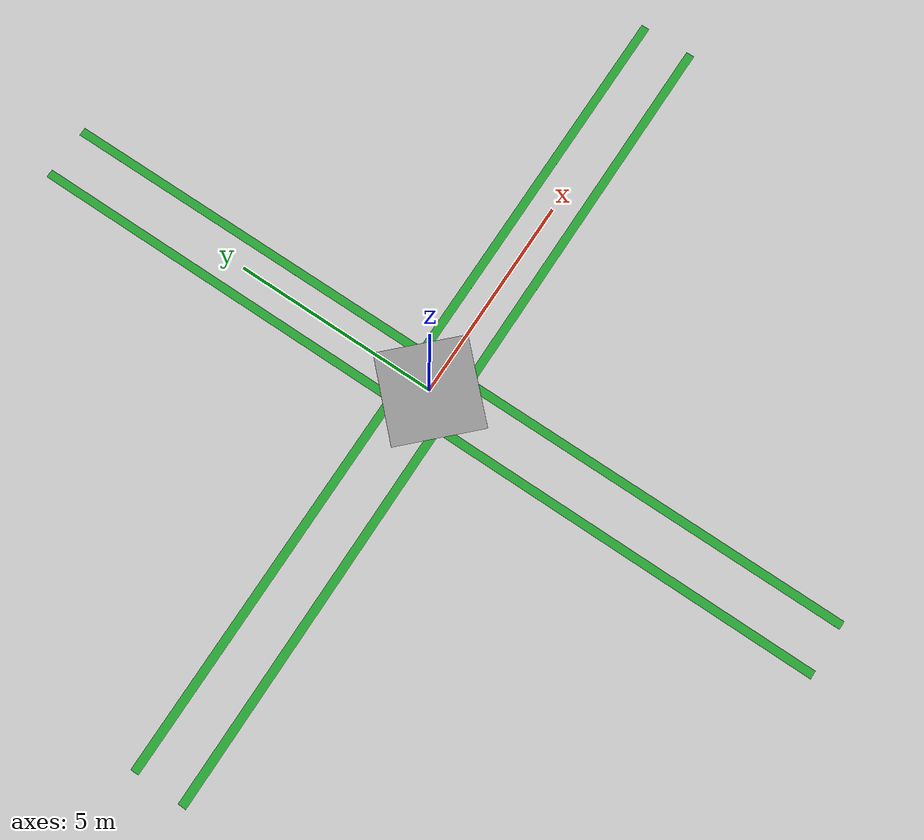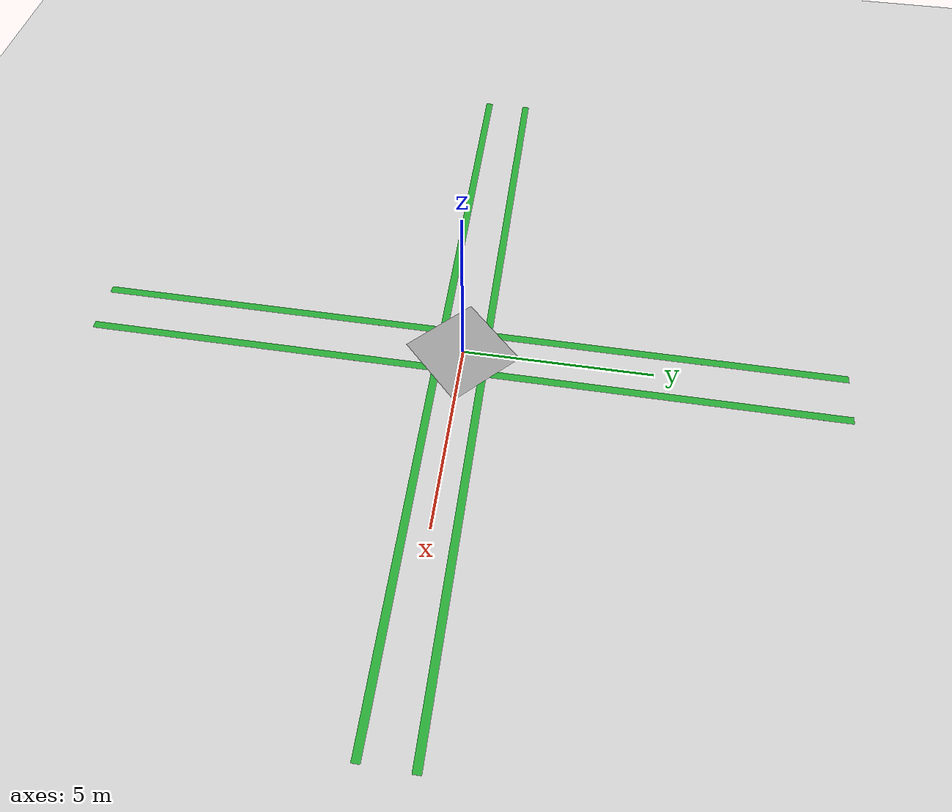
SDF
<sdf version="1.7">
 <world name="default">
  <scene>
   <grid>0</grid>
   <ambient>0.4 0.4 0.4 1</ambient>
   <background>0.7 0.7 0.7 1</background>
   <shadows>1</shadows>
  </scene>
  <light name="sun" type="directional">
   <pose>0 0 10 0 -0 0</pose>
   <diffuse>0.8 0.8 0.8 1</diffuse>
   <specular>0.2 0.2 0.2 1</specular>
   <attenuation>
    <range>1000</range>
    <constant>0.9</constant>
    <linear>0.01</linear>
    <quadratic>0.001</quadratic>
   </attenuation>
   <direction>-0.5 0.1 -0.9</direction>
   <spot><inner_angle>0</inner_angle><outer_angle>0</outer_angle><falloff>0</falloff></spot>
  </light>
  <model name="ground_plane">
   <static>1</static>
   <link name="link">
    <collision name="collision">
     <geometry><plane><normal>0 0 1</normal><size>100 100</size></plane></geometry>
     <surface>
      <contact><collide_bitmask>65535</collide_bitmask></contact>
      <friction><ode><mu>100</mu><mu2>50</mu2></ode></friction>
     </surface>
    </collision>
    <visual name="visual">
     <cast_shadows>0</cast_shadows>
     <geometry><plane><normal>0 0 1</normal><size>100 100</size></plane></geometry>
     <material>
      <script><uri>file://media/materials/scripts/gazebo.material</uri><name>Gazebo/Grey</name></script>
     </material>
    </visual>
   </link>
  </model>
  <gravity>0 0 -9.8</gravity>
  <magnetic_field>6e-06 2.3e-05 -4.2e-05</magnetic_field>
  <atmosphere type="adiabatic"/>
  <physics type="ode">
   <max_step_size>0.001</max_step_size>
   <real_time_factor>1</real_time_factor>
   <real_time_update_rate>1000</real_time_update_rate>
  </physics>
  <spherical_coordinates>
   <surface_model>EARTH_WGS84</surface_model>
   <latitude_deg>0</latitude_deg>
   <longitude_deg>0</longitude_deg>
   <elevation>0</elevation>
   <heading_deg>0</heading_deg>
  </spherical_coordinates>
  <model name="greens">
   <link name="link_1">
    <inertial>
     <mass>1</mass>
     <inertia>
      <ixx>0.166667</ixx>
      <ixy>0</ixy>
      <ixz>0</ixz>
      <iyy>0.166667</iyy>
      <iyz>0</iyz>
      <izz>0.166667</izz>
     </inertia>
    </inertial>
    <pose>0 2e-06 -0 0 -0 0</pose>
    <visual name="visual">
     <geometry><box><size>0.2 10 0.0001</size></box></geometry>
     <material>
      <lighting>1</lighting>
      <script><uri>file://media/materials/scripts/gazebo.material</uri><name>Gazebo/Green</name></script>
      <shader type="pixel"><normal_map>__default__</normal_map></shader>
      <ambient>0 0.3 0 0.5</ambient>
      <diffuse>0 0.3 0 0.5</diffuse>
      <specular>0.01 0.01 0.01 1</specular>
      <emissive>0 0 0 1</emissive>
     </material>
    </visual>
    <collision name="collision">
     <geometry><box><size>0.1 1 0.0001</size></box></geometry>
     <surface>
      <friction>
       <ode><mu>1</mu><mu2>1</mu2><fdir1>0 0 0</fdir1><slip1>0</slip1><slip2>0</slip2></ode>
       <torsional>
        <coefficient>1</coefficient>
        <patch_radius>0</patch_radius>
        <surface_radius>0</surface_radius>
        <use_patch_radius>1</use_patch_radius>
        <ode><slip>0</slip></ode>
       </torsional>
      </friction>
      <bounce><restitution_coefficient>0</restitution_coefficient><threshold>1e+06</threshold></bounce>
      <contact>
       <collide_without_contact>0</collide_without_contact>
       <collide_without_contact_bitmask>1</collide_without_contact_bitmask>
       <collide_bitmask>1</collide_bitmask>
       <ode>
        <soft_cfm>0</soft_cfm>
        <soft_erp>0.2</soft_erp>
        <kp>1e+13</kp>
        <kd>1</kd>
        <max_vel>0.01</max_vel>
        <min_depth>0</min_depth>
       </ode>
       <bullet>
        <split_impulse>1</split_impulse>
        <split_impulse_penetration_threshold>-0.01</split_impulse_penetration_threshold>
        <soft_cfm>0</soft_cfm>
        <soft_erp>0.2</soft_erp>
        <kp>1e+13</kp>
        <kd>1</kd>
       </bullet>
      </contact>
     </surface>
    </collision>
   </link>
   <static>0</static>
   <pose>0.611446 -4.99363 4.8e-05 -5e-06 -0 0</pose>
  </model>
  <model name="greens_clone">
   <link name="link_1">
    <inertial>
     <mass>1</mass>
     <inertia>
      <ixx>0.166667</ixx>
      <ixy>0</ixy>
      <ixz>0</ixz>
      <iyy>0.166667</iyy>
      <iyz>0</iyz>
      <izz>0.166667</izz>
     </inertia>
    </inertial>
    <pose>0 2e-06 -0 0 -0 0</pose>
    <visual name="visual">
     <geometry><box><size>0.2 10 0.0001</size></box></geometry>
     <material>
      <lighting>1</lighting>
      <script><uri>file://media/materials/scripts/gazebo.material</uri><name>Gazebo/Green</name></script>
      <shader type="pixel"><normal_map>__default__</normal_map></shader>
      <ambient>0 0.3 0 0.5</ambient>
      <diffuse>0 0.3 0 0.5</diffuse>
      <specular>0.01 0.01 0.01 1</specular>
      <emissive>0 0 0 1</emissive>
     </material>
    </visual>
    <collision name="collision">
     <geometry><box><size>0.1 1 0.0001</size></box></geometry>
     <surface>
      <friction>
       <ode><mu>1</mu><mu2>1</mu2><fdir1>0 0 0</fdir1><slip1>0</slip1><slip2>0</slip2></ode>
       <torsional>
        <coefficient>1</coefficient>
        <patch_radius>0</patch_radius>
        <surface_radius>0</surface_radius>
        <use_patch_radius>1</use_patch_radius>
        <ode><slip>0</slip></ode>
       </torsional>
      </friction>
      <bounce><restitution_coefficient>0</restitution_coefficient><threshold>1e+06</threshold></bounce>
      <contact>
       <collide_without_contact>0</collide_without_contact>
       <collide_without_contact_bitmask>1</collide_without_contact_bitmask>
       <collide_bitmask>1</collide_bitmask>
       <ode>
        <soft_cfm>0</soft_cfm>
        <soft_erp>0.2</soft_erp>
        <kp>1e+13</kp>
        <kd>1</kd>
        <max_vel>0.01</max_vel>
        <min_depth>0</min_depth>
       </ode>
       <bullet>
        <split_impulse>1</split_impulse>
        <split_impulse_penetration_threshold>-0.01</split_impulse_penetration_threshold>
        <soft_cfm>0</soft_cfm>
        <soft_erp>0.2</soft_erp>
        <kp>1e+13</kp>
        <kd>1</kd>
       </bullet>
      </contact>
     </surface>
    </collision>
   </link>
   <static>0</static>
   <pose>-0.603876 -4.99465 4.8e-05 -5e-06 -0 0</pose>
  </model>
  <model name="greens_clone_0">
   <link name="link_1">
    <inertial>
     <mass>1</mass>
     <inertia>
      <ixx>0.166667</ixx>
      <ixy>0</ixy>
      <ixz>0</ixz>
      <iyy>0.166667</iyy>
      <iyz>0</iyz>
      <izz>0.166667</izz>
     </inertia>
    </inertial>
    <pose>0 2e-06 -0 0 -0 0</pose>
    <visual name="visual">
     <geometry><box><size>0.2 10 0.0001</size></box></geometry>
     <material>
      <lighting>1</lighting>
      <script><uri>file://media/materials/scripts/gazebo.material</uri><name>Gazebo/Green</name></script>
      <shader type="pixel"><normal_map>__default__</normal_map></shader>
      <ambient>0 0.3 0 0.5</ambient>
      <diffuse>0 0.3 0 0.5</diffuse>
      <specular>0.01 0.01 0.01 1</specular>
      <emissive>0 0 0 1</emissive>
     </material>
    </visual>
    <collision name="collision">
     <geometry><box><size>0.1 1 0.0001</size></box></geometry>
     <surface>
      <friction>
       <ode><mu>1</mu><mu2>1</mu2><fdir1>0 0 0</fdir1><slip1>0</slip1><slip2>0</slip2></ode>
       <torsional>
        <coefficient>1</coefficient>
        <patch_radius>0</patch_radius>
        <surface_radius>0</surface_radius>
        <use_patch_radius>1</use_patch_radius>
        <ode><slip>0</slip></ode>
       </torsional>
      </friction>
      <bounce><restitution_coefficient>0</restitution_coefficient><threshold>1e+06</threshold></bounce>
      <contact>
       <collide_without_contact>0</collide_without_contact>
       <collide_without_contact_bitmask>1</collide_without_contact_bitmask>
       <collide_bitmask>1</collide_bitmask>
       <ode>
        <soft_cfm>0</soft_cfm>
        <soft_erp>0.2</soft_erp>
        <kp>1e+13</kp>
        <kd>1</kd>
        <max_vel>0.01</max_vel>
        <min_depth>0</min_depth>
       </ode>
       <bullet>
        <split_impulse>1</split_impulse>
        <split_impulse_penetration_threshold>-0.01</split_impulse_penetration_threshold>
        <soft_cfm>0</soft_cfm>
        <soft_erp>0.2</soft_erp>
        <kp>1e+13</kp>
        <kd>1</kd>
       </bullet>
      </contact>
     </surface>
    </collision>
   </link>
   <static>0</static>
   <pose>0.611106 4.99562 4.8e-05 -5e-06 -0 0</pose>
  </model>
  <model name="greens_clone_1">
   <link name="link_1">
    <inertial>
     <mass>1</mass>
     <inertia>
      <ixx>0.166667</ixx>
      <ixy>0</ixy>
      <ixz>0</ixz>
      <iyy>0.166667</iyy>
      <iyz>0</iyz>
      <izz>0.166667</izz>
     </inertia>
    </inertial>
    <pose>0 2e-06 -0 0 -0 0</pose>
    <visual name="visual">
     <geometry><box><size>0.2 10 0.0001</size></box></geometry>
     <material>
      <lighting>1</lighting>
      <script><uri>file://media/materials/scripts/gazebo.material</uri><name>Gazebo/Green</name></script>
      <shader type="pixel"><normal_map>__default__</normal_map></shader>
      <ambient>0 0.3 0 0.5</ambient>
      <diffuse>0 0.3 0 0.5</diffuse>
      <specular>0.01 0.01 0.01 1</specular>
      <emissive>0 0 0 1</emissive>
     </material>
    </visual>
    <collision name="collision">
     <geometry><box><size>0.1 1 0.0001</size></box></geometry>
     <surface>
      <friction>
       <ode><mu>1</mu><mu2>1</mu2><fdir1>0 0 0</fdir1><slip1>0</slip1><slip2>0</slip2></ode>
       <torsional>
        <coefficient>1</coefficient>
        <patch_radius>0</patch_radius>
        <surface_radius>0</surface_radius>
        <use_patch_radius>1</use_patch_radius>
        <ode><slip>0</slip></ode>
       </torsional>
      </friction>
      <bounce><restitution_coefficient>0</restitution_coefficient><threshold>1e+06</threshold></bounce>
      <contact>
       <collide_without_contact>0</collide_without_contact>
       <collide_without_contact_bitmask>1</collide_without_contact_bitmask>
       <collide_bitmask>1</collide_bitmask>
       <ode>
        <soft_cfm>0</soft_cfm>
        <soft_erp>0.2</soft_erp>
        <kp>1e+13</kp>
        <kd>1</kd>
        <max_vel>0.01</max_vel>
        <min_depth>0</min_depth>
       </ode>
       <bullet>
        <split_impulse>1</split_impulse>
        <split_impulse_penetration_threshold>-0.01</split_impulse_penetration_threshold>
        <soft_cfm>0</soft_cfm>
        <soft_erp>0.2</soft_erp>
        <kp>1e+13</kp>
        <kd>1</kd>
       </bullet>
      </contact>
     </surface>
    </collision>
   </link>
   <static>0</static>
   <pose>-0.615595 5.00212 4.8e-05 -5e-06 -0 0</pose>
  </model>
  <model name="greens_clone_2">
   <link name="link_1">
    <inertial>
     <mass>1</mass>
     <inertia>
      <ixx>0.166667</ixx>
      <ixy>0</ixy>
      <ixz>0</ixz>
      <iyy>0.166667</iyy>
      <iyz>0</iyz>
      <izz>0.166667</izz>
     </inertia>
    </inertial>
    <pose>0 2e-06 -0 0 -0 0</pose>
    <visual name="visual">
     <geometry><box><size>0.2 10 0.0001</size></box></geometry>
     <material>
      <lighting>1</lighting>
      <script><uri>file://media/materials/scripts/gazebo.material</uri><name>Gazebo/Green</name></script>
      <shader type="pixel"><normal_map>__default__</normal_map></shader>
      <ambient>0 0.3 0 0.5</ambient>
      <diffuse>0 0.3 0 0.5</diffuse>
      <specular>0.01 0.01 0.01 1</specular>
      <emissive>0 0 0 1</emissive>
     </material>
    </visual>
    <collision name="collision">
     <geometry><box><size>0.1 1 0.0001</size></box></geometry>
     <surface>
      <friction>
       <ode><mu>1</mu><mu2>1</mu2><fdir1>0 0 0</fdir1><slip1>0</slip1><slip2>0</slip2></ode>
       <torsional>
        <coefficient>1</coefficient>
        <patch_radius>0</patch_radius>
        <surface_radius>0</surface_radius>
        <use_patch_radius>1</use_patch_radius>
        <ode><slip>0</slip></ode>
       </torsional>
      </friction>
      <bounce><restitution_coefficient>0</restitution_coefficient><threshold>1e+06</threshold></bounce>
      <contact>
       <collide_without_contact>0</collide_without_contact>
       <collide_without_contact_bitmask>1</collide_without_contact_bitmask>
       <collide_bitmask>1</collide_bitmask>
       <ode>
        <soft_cfm>0</soft_cfm>
        <soft_erp>0.2</soft_erp>
        <kp>1e+13</kp>
        <kd>1</kd>
        <max_vel>0.01</max_vel>
        <min_depth>0</min_depth>
       </ode>
       <bullet>
        <split_impulse>1</split_impulse>
        <split_impulse_penetration_threshold>-0.01</split_impulse_penetration_threshold>
        <soft_cfm>0</soft_cfm>
        <soft_erp>0.2</soft_erp>
        <kp>1e+13</kp>
        <kd>1</kd>
       </bullet>
      </contact>
     </surface>
    </collision>
   </link>
   <static>0</static>
   <pose>4.99656 -0.615663 4.8e-05 5e-06 -0 1.57</pose>
  </model>
  <model name="greens_clone_2_clone">
   <link name="link_1">
    <inertial>
     <mass>1</mass>
     <inertia>
      <ixx>0.166667</ixx>
      <ixy>0</ixy>
      <ixz>0</ixz>
      <iyy>0.166667</iyy>
      <iyz>0</iyz>
      <izz>0.166667</izz>
     </inertia>
    </inertial>
    <pose>0 2e-06 -0 0 -0 0</pose>
    <visual name="visual">
     <geometry><box><size>0.2 10 0.0001</size></box></geometry>
     <material>
      <lighting>1</lighting>
      <script><uri>file://media/materials/scripts/gazebo.material</uri><name>Gazebo/Green</name></script>
      <shader type="pixel"><normal_map>__default__</normal_map></shader>
      <ambient>0 0.3 0 0.5</ambient>
      <diffuse>0 0.3 0 0.5</diffuse>
      <specular>0.01 0.01 0.01 1</specular>
      <emissive>0 0 0 1</emissive>
     </material>
    </visual>
    <collision name="collision">
     <geometry><box><size>0.1 1 0.0001</size></box></geometry>
     <surface>
      <friction>
       <ode><mu>1</mu><mu2>1</mu2><fdir1>0 0 0</fdir1><slip1>0</slip1><slip2>0</slip2></ode>
       <torsional>
        <coefficient>1</coefficient>
        <patch_radius>0</patch_radius>
        <surface_radius>0</surface_radius>
        <use_patch_radius>1</use_patch_radius>
        <ode><slip>0</slip></ode>
       </torsional>
      </friction>
      <bounce><restitution_coefficient>0</restitution_coefficient><threshold>1e+06</threshold></bounce>
      <contact>
       <collide_without_contact>0</collide_without_contact>
       <collide_without_contact_bitmask>1</collide_without_contact_bitmask>
       <collide_bitmask>1</collide_bitmask>
       <ode>
        <soft_cfm>0</soft_cfm>
        <soft_erp>0.2</soft_erp>
        <kp>1e+13</kp>
        <kd>1</kd>
        <max_vel>0.01</max_vel>
        <min_depth>0</min_depth>
       </ode>
       <bullet>
        <split_impulse>1</split_impulse>
        <split_impulse_penetration_threshold>-0.01</split_impulse_penetration_threshold>
        <soft_cfm>0</soft_cfm>
        <soft_erp>0.2</soft_erp>
        <kp>1e+13</kp>
        <kd>1</kd>
       </bullet>
      </contact>
     </surface>
    </collision>
   </link>
   <static>0</static>
   <pose>5.01032 0.614211 4.8e-05 -5e-06 -0 1.57</pose>
  </model>
  <model name="greens_clone_2_clone_0">
   <link name="link_1">
    <inertial>
     <mass>1</mass>
     <inertia>
      <ixx>0.166667</ixx>
      <ixy>0</ixy>
      <ixz>0</ixz>
      <iyy>0.166667</iyy>
      <iyz>0</iyz>
      <izz>0.166667</izz>
     </inertia>
    </inertial>
    <pose>0 2e-06 -0 0 -0 0</pose>
    <visual name="visual">
     <geometry><box><size>0.2 10 0.0001</size></box></geometry>
     <material>
      <lighting>1</lighting>
      <script><uri>file://media/materials/scripts/gazebo.material</uri><name>Gazebo/Green</name></script>
      <shader type="pixel"><normal_map>__default__</normal_map></shader>
      <ambient>0 0.3 0 0.5</ambient>
      <diffuse>0 0.3 0 0.5</diffuse>
      <specular>0.01 0.01 0.01 1</specular>
      <emissive>0 0 0 1</emissive>
     </material>
    </visual>
    <collision name="collision">
     <geometry><box><size>0.1 1 0.0001</size></box></geometry>
     <surface>
      <friction>
       <ode><mu>1</mu><mu2>1</mu2><fdir1>0 0 0</fdir1><slip1>0</slip1><slip2>0</slip2></ode>
       <torsional>
        <coefficient>1</coefficient>
        <patch_radius>0</patch_radius>
        <surface_radius>0</surface_radius>
        <use_patch_radius>1</use_patch_radius>
        <ode><slip>0</slip></ode>
       </torsional>
      </friction>
      <bounce><restitution_coefficient>0</restitution_coefficient><threshold>1e+06</threshold></bounce>
      <contact>
       <collide_without_contact>0</collide_without_contact>
       <collide_without_contact_bitmask>1</collide_without_contact_bitmask>
       <collide_bitmask>1</collide_bitmask>
       <ode>
        <soft_cfm>0</soft_cfm>
        <soft_erp>0.2</soft_erp>
        <kp>1e+13</kp>
        <kd>1</kd>
        <max_vel>0.01</max_vel>
        <min_depth>0</min_depth>
       </ode>
       <bullet>
        <split_impulse>1</split_impulse>
        <split_impulse_penetration_threshold>-0.01</split_impulse_penetration_threshold>
        <soft_cfm>0</soft_cfm>
        <soft_erp>0.2</soft_erp>
        <kp>1e+13</kp>
        <kd>1</kd>
       </bullet>
      </contact>
     </surface>
    </collision>
   </link>
   <static>0</static>
   <pose>-4.99803 0.598634 4.8e-05 5e-06 -0 1.57</pose>
  </model>
  <model name="greens_clone_2_clone_1">
   <link name="link_1">
    <inertial>
     <mass>1</mass>
     <inertia>
      <ixx>0.166667</ixx>
      <ixy>0</ixy>
      <ixz>0</ixz>
      <iyy>0.166667</iyy>
      <iyz>0</iyz>
      <izz>0.166667</izz>
     </inertia>
    </inertial>
    <pose>0 2e-06 -0 0 -0 0</pose>
    <visual name="visual">
     <geometry><box><size>0.2 10 0.0001</size></box></geometry>
     <material>
      <lighting>1</lighting>
      <script><uri>file://media/materials/scripts/gazebo.material</uri><name>Gazebo/Green</name></script>
      <shader type="pixel"><normal_map>__default__</normal_map></shader>
      <ambient>0 0.3 0 0.5</ambient>
      <diffuse>0 0.3 0 0.5</diffuse>
      <specular>0.01 0.01 0.01 1</specular>
      <emissive>0 0 0 1</emissive>
     </material>
    </visual>
    <collision name="collision">
     <geometry><box><size>0.1 1 0.0001</size></box></geometry>
     <surface>
      <friction>
       <ode><mu>1</mu><mu2>1</mu2><fdir1>0 0 0</fdir1><slip1>0</slip1><slip2>0</slip2></ode>
       <torsional>
        <coefficient>1</coefficient>
        <patch_radius>0</patch_radius>
        <surface_radius>0</surface_radius>
        <use_patch_radius>1</use_patch_radius>
        <ode><slip>0</slip></ode>
       </torsional>
      </friction>
      <bounce><restitution_coefficient>0</restitution_coefficient><threshold>1e+06</threshold></bounce>
      <contact>
       <collide_without_contact>0</collide_without_contact>
       <collide_without_contact_bitmask>1</collide_without_contact_bitmask>
       <collide_bitmask>1</collide_bitmask>
       <ode>
        <soft_cfm>0</soft_cfm>
        <soft_erp>0.2</soft_erp>
        <kp>1e+13</kp>
        <kd>1</kd>
        <max_vel>0.01</max_vel>
        <min_depth>0</min_depth>
       </ode>
       <bullet>
        <split_impulse>1</split_impulse>
        <split_impulse_penetration_threshold>-0.01</split_impulse_penetration_threshold>
        <soft_cfm>0</soft_cfm>
        <soft_erp>0.2</soft_erp>
        <kp>1e+13</kp>
        <kd>1</kd>
       </bullet>
      </contact>
     </surface>
    </collision>
   </link>
   <static>0</static>
   <pose>-5.00172 -0.60403 4.8e-05 5e-06 -0 1.57</pose>
  </model>
  <model name="intersection">
   <link name="link_0">
    <inertial>
     <mass>88.5623</mass>
     <inertia><ixx>33.8657</ixx><ixy>0</ixy><ixz>0</ixz><iyy>33.8657</iyy><iyz>0</iyz><izz>67.7313</izz></inertia>
    </inertial>
    <pose>0 0 0 0 -0 0.785</pose>
    <visual name="visual">
     <geometry><box><size>2.14213 2.14213 0.0001</size></box></geometry>
     <material>
      <lighting>1</lighting>
      <script><uri>file://media/materials/scripts/gazebo.material</uri><name>Gazebo/Gray</name></script>
      <shader type="pixel"><normal_map>__default__</normal_map></shader>
      <ambient>0.26 0.27 0.28 1</ambient>
      <diffuse>0.26 0.27 0.28 1</diffuse>
      <specular>0.01 0.01 0.01 1</specular>
      <emissive>0 0 0 1</emissive>
     </material>
    </visual>
    <collision name="collision">
     <geometry><box><size>1e-05 0.001 0.001</size></box></geometry>
     <surface>
      <friction>
       <ode><mu>1</mu><mu2>1</mu2><fdir1>0 0 0</fdir1><slip1>0</slip1><slip2>0</slip2></ode>
       <torsional>
        <coefficient>1</coefficient>
        <patch_radius>0</patch_radius>
        <surface_radius>0</surface_radius>
        <use_patch_radius>1</use_patch_radius>
        <ode><slip>0</slip></ode>
       </torsional>
      </friction>
      <bounce><restitution_coefficient>0</restitution_coefficient><threshold>1e+06</threshold></bounce>
      <contact>
       <collide_without_contact>0</collide_without_contact>
       <collide_without_contact_bitmask>1</collide_without_contact_bitmask>
       <collide_bitmask>1</collide_bitmask>
       <ode>
        <soft_cfm>0</soft_cfm>
        <soft_erp>0.2</soft_erp>
        <kp>1e+13</kp>
        <kd>1</kd>
        <max_vel>0.01</max_vel>
        <min_depth>0</min_depth>
       </ode>
       <bullet>
        <split_impulse>1</split_impulse>
        <split_impulse_penetration_threshold>-0.01</split_impulse_penetration_threshold>
        <soft_cfm>0</soft_cfm>
        <soft_erp>0.2</soft_erp>
        <kp>1e+13</kp>
        <kd>1</kd>
       </bullet>
      </contact>
     </surface>
    </collision>
   </link>
   <static>0</static>
   <pose>-0 0 0.00049 -2e-06 -2e-06 0</pose>
  </model>
 </world>
</sdf>
